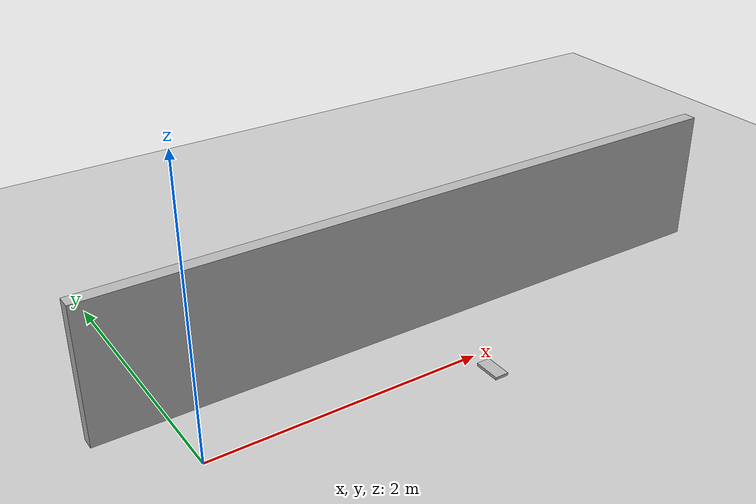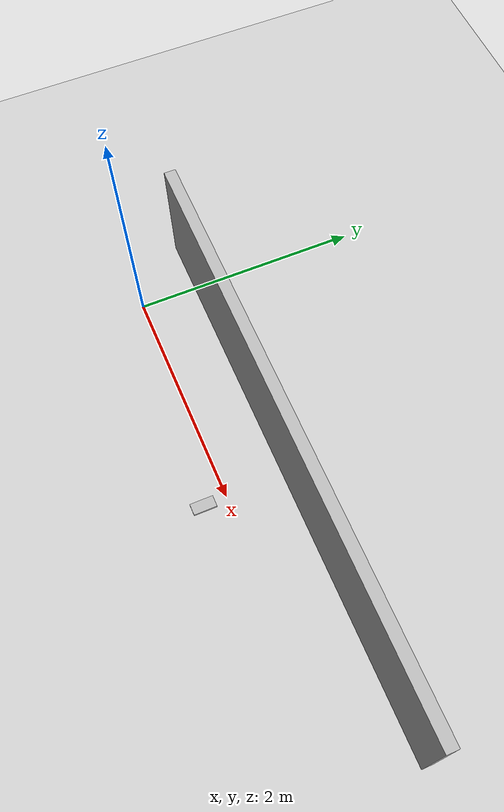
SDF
<?xml version="1.0" ?>
<sdf version="1.5">
  <world name="default">
    <include>
      <uri>model://sun</uri>
    </include>
    <model name="world">
      <include>
        <uri>model://ground_plane</uri>
      </include>
      <link name="boxlink">
        <pose> 2 0.55 0.5 0 0 0</pose>
        <collision name="box_collision">
          <geometry>
            <box>
              <size>5 0.1 1</size>
            </box>
          </geometry>
        </collision>
        <visual name="visual">
          <geometry>
            <box>
              <size>5 0.1 1</size>
            </box>
          </geometry>
        </visual>
      </link>

      <link name="disturb1">
        <pose> 2 -0.2 0.01 0 0 0</pose>
        <collision name="box_collision">
          <geometry>
            <box>
              <size>0.1 0.2 0.02</size>
            </box>
          </geometry>
        </collision>
        <visual name="visual">
          <geometry>
            <box>
              <size>0.1 0.2 0.02</size>
            </box>
          </geometry>
        </visual>
      </link>

      <joint name="ur5e_fixed_joint" type="fixed">
        <origin xyz="0 0 0" rpy="0 0 0" />
        <parent link="boxlink"/>
        <child link="ground_plane::link"/>
      </joint>
      <joint name="disturb1_fixed_joint" type="fixed">
        <origin xyz="0 0 0" rpy="0 0 0" />
        <parent link="disturb1"/>
        <child link="ground_plane::link"/>
      </joint>

    </model>

  </world>
</sdf>
